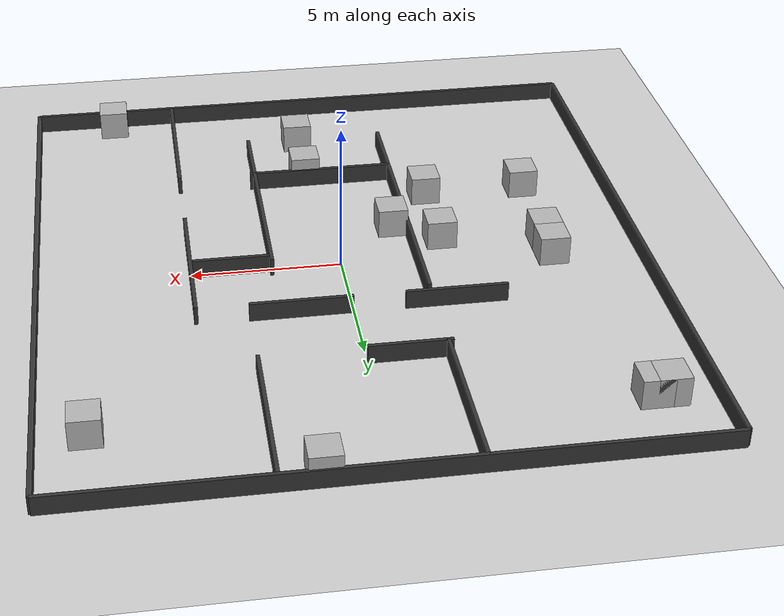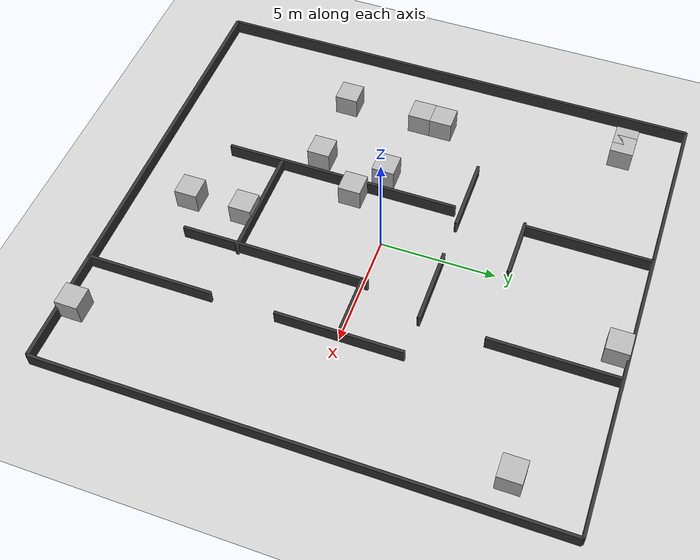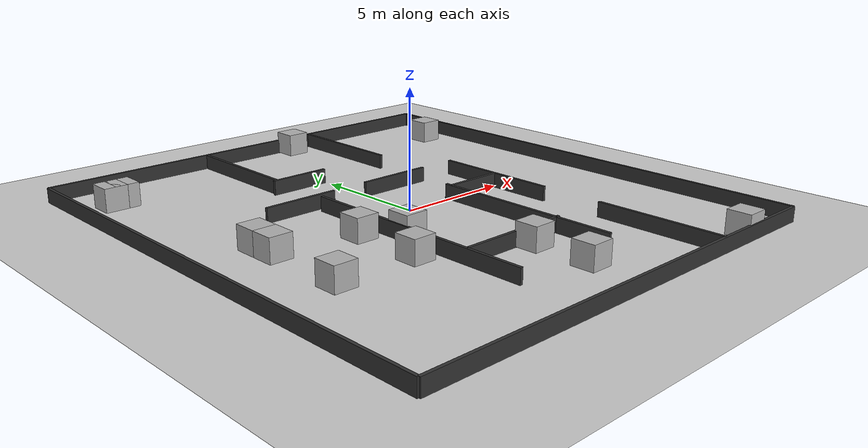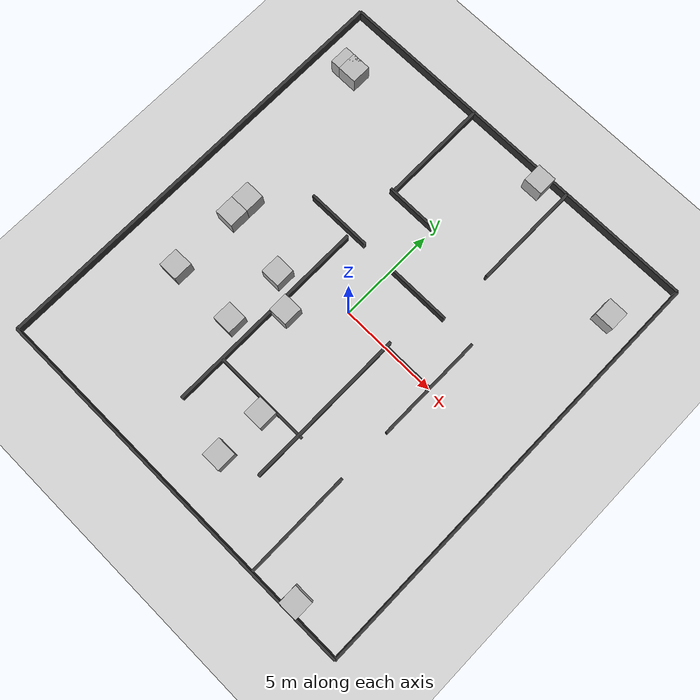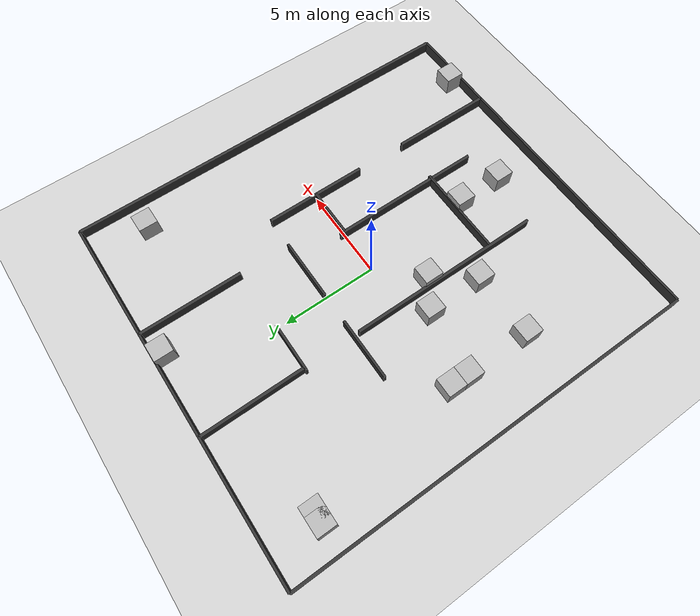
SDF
<?xml version="1.0" ?>
<sdf version='1.9'>
  <world name='test_world'>
    <physics name='1ms' type='ignored'>
      <max_step_size>0.001</max_step_size>
      <real_time_factor>1</real_time_factor>
      <real_time_update_rate>1000</real_time_update_rate>
    </physics>
    <plugin name='ignition::gazebo::systems::Physics' filename='ignition-gazebo-physics-system'/>
    <plugin name='ignition::gazebo::systems::UserCommands' filename='ignition-gazebo-user-commands-system'/>
    <plugin name='ignition::gazebo::systems::SceneBroadcaster' filename='ignition-gazebo-scene-broadcaster-system'/>
    <gravity>0 0 -9.8</gravity>
    <magnetic_field>6e-06 2.3e-05 -4.2e-05</magnetic_field>
    <atmosphere type='adiabatic'/>
    <scene>
      <ambient>0.4 0.4 0.4 1</ambient>
      <background>0.7 0.7 0.7 1</background>
      <shadows>true</shadows>
    </scene>
    <model name='ground_plane'>
      <static>true</static>
      <link name='link'>
        <collision name='collision'>
          <geometry>
            <plane>
              <normal>0 0 1</normal>
              <size>20 22</size>
            </plane>
          </geometry>
          <surface>
            <friction>
              <ode/>
            </friction>
            <bounce/>
            <contact/>
          </surface>
        </collision>
        <visual name='visual'>
          <geometry>
            <plane>
              <normal>0 0 1</normal>
              <size>20 22</size>
            </plane>
          </geometry>
          <material>
            <ambient>0.8 0.8 0.8 1</ambient>
            <diffuse>0.8 0.8 0.8 1</diffuse>
            <specular>0.8 0.8 0.8 1</specular>
          </material>
        </visual>
        <pose>0 0 0 0 0 0</pose>
        <inertial>
          <pose>0 0 0 0 0 0</pose>
          <mass>1</mass>
          <inertia>
            <ixx>1</ixx>
            <ixy>0</ixy>
            <ixz>0</ixz>
            <iyy>1</iyy>
            <iyz>0</iyz>
            <izz>1</izz>
          </inertia>
        </inertial>
        <enable_wind>false</enable_wind>
      </link>
      <pose>0 0 0 0 0 0</pose>
      <self_collide>false</self_collide>
    </model>
    <model name='wall'>
      <link name='length_right'>
        <pose>0 -11 0 0 0 0</pose>
        <inertial>
          <mass>1.14395</mass>
          <inertia>
            <ixx>9.5329</ixx>
            <ixy>0</ixy>
            <ixz>0</ixz>
            <iyy>0.0238</iyy>
            <iyz>0</iyz>
            <izz>9.5567</izz>
          </inertia>
          <pose>0 0 0 0 0 0</pose>
        </inertial>
        <collision name='box_collision'>
          <geometry>
            <box>
              <size>20 0.125 1.2</size>
            </box>
          </geometry>
          <surface>
            <friction>
              <ode/>
            </friction>
            <bounce/>
            <contact/>
          </surface>
        </collision>
        <visual name='box_visual'>
          <geometry>
            <box>
              <size>20 0.125 1.2</size>
            </box>
          </geometry>
          <material>
            <ambient>0.2 0.2 0.2 1</ambient>
            <diffuse>0.2 0.2 0.2 1</diffuse>
            <specular>0.2 0.2 0.2 1</specular>
          </material>
        </visual>
        <enable_wind>false</enable_wind>
      </link>
      <link name='length_left'>
        <pose>0 11 0 0 0 0</pose>
        <inertial>
          <mass>1.14395</mass>
          <inertia>
            <ixx>9.5329</ixx>
            <ixy>0</ixy>
            <ixz>0</ixz>
            <iyy>0.0238</iyy>
            <iyz>0</iyz>
            <izz>9.5567</izz>
          </inertia>
          <pose>0 0 0 0 0 0</pose>
        </inertial>
        <collision name='box_collision'>
          <geometry>
            <box>
              <size>20 0.125 1.2</size>
            </box>
          </geometry>
          <surface>
            <friction>
              <ode/>
            </friction>
            <bounce/>
            <contact/>
          </surface>
        </collision>
        <visual name='box_visual'>
          <geometry>
            <box>
              <size>20 0.125 1.2</size>
            </box>
          </geometry>
          <material>
            <ambient>0.2 0.2 0.2 1</ambient>
            <diffuse>0.2 0.2 0.2 1</diffuse>
            <specular>0.2 0.2 0.2 1</specular>
          </material>
        </visual>
        <enable_wind>false</enable_wind>
      </link>
      <link name='width_right'>
        <pose>-10 0 0 0 0 0</pose>
        <inertial>
          <mass>1000</mass>
          <inertia>
            <ixx>0.16666</ixx>
            <ixy>0</ixy>
            <ixz>0</ixz>
            <iyy>0.16666</iyy>
            <iyz>0</iyz>
            <izz>0.16666</izz>
          </inertia>
          <pose>0 0 0 0 0 0</pose>
        </inertial>
        <collision name='box_collision'>
          <geometry>
            <box>
              <size>0.125 22 1.2</size>
            </box>
          </geometry>
          <surface>
            <friction>
              <ode/>
            </friction>
            <bounce/>
            <contact/>
          </surface>
        </collision>
        <visual name='box_visual'>
          <geometry>
            <box>
              <size>0.125 22 1.2</size>
            </box>
          </geometry>
          <material>
            <ambient>0.2 0.2 0.2 1</ambient>
            <diffuse>0.2 0.2 0.2 1</diffuse>
            <specular>0.2 0.2 0.2 1</specular>
          </material>
        </visual>
        <enable_wind>false</enable_wind>
      </link>
      <link name='width_left'>
        <pose>10 0 0 0 0 0</pose>
        <inertial>
          <mass>1000</mass>
          <inertia>
            <ixx>0.16666</ixx>
            <ixy>0</ixy>
            <ixz>0</ixz>
            <iyy>0.16666</iyy>
            <iyz>0</iyz>
            <izz>0.16666</izz>
          </inertia>
          <pose>0 0 0 0 0 0</pose>
        </inertial>
        <collision name='box_collision'>
          <geometry>
            <box>
              <size>0.125 22 1.2</size>
            </box>
          </geometry>
          <surface>
            <friction>
              <ode/>
            </friction>
            <bounce/>
            <contact/>
          </surface>
        </collision>
        <visual name='box_visual'>
          <geometry>
            <box>
              <size>0.125 22 1.2</size>
            </box>
          </geometry>
          <material>
            <ambient>0.2 0.2 0.2 1</ambient>
            <diffuse>0.2 0.2 0.2 1</diffuse>
            <specular>0.2 0.2 0.2 1</specular>
          </material>
        </visual>
        <enable_wind>false</enable_wind>
      </link>
      <link name='top_from_right_to_middle_width'>
        <pose>5 -8.25 0 0 0 0</pose>
        <inertial>
          <mass>1000</mass>
          <inertia>
            <ixx>9.5329</ixx>
            <ixy>0</ixy>
            <ixz>0</ixz>
            <iyy>0.0238</iyy>
            <iyz>0</iyz>
            <izz>9.5567</izz>
          </inertia>
          <pose>0 0 0 0 0 0</pose>
        </inertial>
        <collision name='box_collision'>
          <geometry>
            <box>
              <size>0.125 5.5 1.2</size>
            </box>
          </geometry>
          <surface>
            <friction>
              <ode/>
            </friction>
            <bounce/>
            <contact/>
          </surface>
        </collision>
        <visual name='box_visual'>
          <geometry>
            <box>
              <size>0.125 5.5 1.2</size>
            </box>
          </geometry>
          <material>
            <ambient>0.2 0.2 0.2 1</ambient>
            <diffuse>0.2 0.2 0.2 1</diffuse>
            <specular>0.2 0.2 0.2 1</specular>
          </material>
        </visual>
        <enable_wind>false</enable_wind>
      </link>
      <link name='top_middle_width'>
        <pose>5 0 0 0 0 0</pose>
        <inertial>
          <mass>1000</mass>
          <inertia>
            <ixx>9.5329</ixx>
            <ixy>0</ixy>
            <ixz>0</ixz>
            <iyy>0.0238</iyy>
            <iyz>0</iyz>
            <izz>9.5567</izz>
          </inertia>
          <pose>0 0 0 0 0 0</pose>
        </inertial>
        <collision name='box_collision'>
          <geometry>
            <box>
              <size>0.125 5.5 1.2</size>
            </box>
          </geometry>
          <surface>
            <friction>
              <ode/>
            </friction>
            <bounce/>
            <contact/>
          </surface>
        </collision>
        <visual name='box_visual'>
          <geometry>
            <box>
              <size>0.125 5.5 1.2</size>
            </box>
          </geometry>
          <material>
            <ambient>0.2 0.2 0.2 1</ambient>
            <diffuse>0.2 0.2 0.2 1</diffuse>
            <specular>0.2 0.2 0.2 1</specular>
          </material>
        </visual>
        <enable_wind>false</enable_wind>
      </link>
      <link name='top_left_length'>
        <pose>3.333 8.25 0 0 0 0</pose>
        <inertial>
          <mass>1000</mass>
          <inertia>
            <ixx>9.5329</ixx>
            <ixy>0</ixy>
            <ixz>0</ixz>
            <iyy>0.0238</iyy>
            <iyz>0</iyz>
            <izz>9.5567</izz>
          </inertia>
          <pose>0 0 0 0 0 0</pose>
        </inertial>
        <collision name='box_collision'>
          <geometry>
            <box>
              <size>0.125 5.5 1.2</size>
            </box>
          </geometry>
          <surface>
            <friction>
              <ode/>
            </friction>
            <bounce/>
            <contact/>
          </surface>
        </collision>
        <visual name='box_visual'>
          <geometry>
            <box>
              <size>0.125 5.5 1.2</size>
            </box>
          </geometry>
          <material>
            <ambient>0.2 0.2 0.2 1</ambient>
            <diffuse>0.2 0.2 0.2 1</diffuse>
            <specular>0.2 0.2 0.2 1</specular>
          </material>
        </visual>
        <enable_wind>false</enable_wind>
      </link>
      <link name='middle_length'>
        <pose>3.667 0 0 0 0 0</pose>
        <inertial>
          <mass>1000</mass>
          <inertia>
            <ixx>9.5329</ixx>
            <ixy>0</ixy>
            <ixz>0</ixz>
            <iyy>0.0238</iyy>
            <iyz>0</iyz>
            <izz>9.5567</izz>
          </inertia>
          <pose>0 0 0 0 0 0</pose>
        </inertial>
        <collision name='box_collision'>
          <geometry>
            <box>
              <size>2.667 0.125 1.2</size>
            </box>
          </geometry>
          <surface>
            <friction>
              <ode/>
            </friction>
            <bounce/>
            <contact/>
          </surface>
        </collision>
        <visual name='box_visual'>
          <geometry>
            <box>
              <size>2.667 0.125 1.2</size>
            </box>
          </geometry>
          <material>
            <ambient>0.2 0.2 0.2 1</ambient>
            <diffuse>0.2 0.2 0.2 1</diffuse>
            <specular>0.2 0.2 0.2 1</specular>
          </material>
        </visual>
        <enable_wind>false</enable_wind>
      </link>
      <link name='middle_width'>
        <pose>2.333 -3.85 0 0 0 0</pose>
        <inertial>
          <mass>1000</mass>
          <inertia>
            <ixx>9.5329</ixx>
            <ixy>0</ixy>
            <ixz>0</ixz>
            <iyy>0.0238</iyy>
            <iyz>0</iyz>
            <izz>9.5567</izz>
          </inertia>
          <pose>0 0 0 0 0 0</pose>
        </inertial>
        <collision name='box_collision'>
          <geometry>
            <box>
              <size>0.125 8.25 1.2</size>
            </box>
          </geometry>
          <surface>
            <friction>
              <ode/>
            </friction>
            <bounce/>
            <contact/>
          </surface>
        </collision>
        <visual name='box_visual'>
          <geometry>
            <box>
              <size>0.125 8.25 1.2</size>
            </box>
          </geometry>
          <material>
            <ambient>0.2 0.2 0.2 1</ambient>
            <diffuse>0.2 0.2 0.2 1</diffuse>
            <specular>0.2 0.2 0.2 1</specular>
          </material>
        </visual>
        <enable_wind>false</enable_wind>
      </link>
      <link name='middle_left_length'>
        <pose>1.667 2.75 0 0 0 0</pose>
        <inertial>
          <mass>1000</mass>
          <inertia>
            <ixx>9.5329</ixx>
            <ixy>0</ixy>
            <ixz>0</ixz>
            <iyy>0.0238</iyy>
            <iyz>0</iyz>
            <izz>9.5567</izz>
          </inertia>
          <pose>0 0 0 0 0 0</pose>
        </inertial>
        <collision name='box_collision'>
          <geometry>
            <box>
              <size>3.333 0.125 1.2</size>
            </box>
          </geometry>
          <surface>
            <friction>
              <ode/>
            </friction>
            <bounce/>
            <contact/>
          </surface>
        </collision>
        <visual name='box_visual'>
          <geometry>
            <box>
              <size>3.333 0.125 1.2</size>
            </box>
          </geometry>
          <material>
            <ambient>0.2 0.2 0.2 1</ambient>
            <diffuse>0.2 0.2 0.2 1</diffuse>
            <specular>0.2 0.2 0.2 1</specular>
          </material>
        </visual>
        <enable_wind>false</enable_wind>
      </link>
      <link name='low_left_length'>
        <pose>-3.333 2.75 0 0 0 0</pose>
        <inertial>
          <mass>1000</mass>
          <inertia>
            <ixx>9.5329</ixx>
            <ixy>0</ixy>
            <ixz>0</ixz>
            <iyy>0.0238</iyy>
            <iyz>0</iyz>
            <izz>9.5567</izz>
          </inertia>
          <pose>0 0 0 0 0 0</pose>
        </inertial>
        <collision name='box_collision'>
          <geometry>
            <box>
              <size>3.333 0.125 1.2</size>
            </box>
          </geometry>
          <surface>
            <friction>
              <ode/>
            </friction>
            <bounce/>
            <contact/>
          </surface>
        </collision>
        <visual name='box_visual'>
          <geometry>
            <box>
              <size>3.333 0.125 1.2</size>
            </box>
          </geometry>
          <material>
            <ambient>0.2 0.2 0.2 1</ambient>
            <diffuse>0.2 0.2 0.2 1</diffuse>
            <specular>0.2 0.2 0.2 1</specular>
          </material>
        </visual>
        <enable_wind>false</enable_wind>
      </link>
      <link name='left_blind_alley_left_wall'>
        <pose>-1.333 5.5 0 0 0 0</pose>
        <inertial>
          <mass>1000</mass>
          <inertia>
            <ixx>9.5329</ixx>
            <ixy>0</ixy>
            <ixz>0</ixz>
            <iyy>0.0238</iyy>
            <iyz>0</iyz>
            <izz>9.5567</izz>
          </inertia>
          <pose>0 0 0 0 0 0</pose>
        </inertial>
        <collision name='box_collision'>
          <geometry>
            <box>
              <size>2.667 0.125 1.2</size>
            </box>
          </geometry>
          <surface>
            <friction>
              <ode/>
            </friction>
            <bounce/>
            <contact/>
          </surface>
        </collision>
        <visual name='box_visual'>
          <geometry>
            <box>
              <size>2.667 0.125 1.2</size>
            </box>
          </geometry>
          <material>
            <ambient>0.2 0.2 0.2 1</ambient>
            <diffuse>0.2 0.2 0.2 1</diffuse>
            <specular>0.2 0.2 0.2 1</specular>
          </material>
        </visual>
        <enable_wind>false</enable_wind>
      </link>
      <link name='left_blind_alley_bottom_wall'>
        <pose>-2.5 8.25 0 0 0 0</pose>
        <inertial>
          <mass>1000</mass>
          <inertia>
            <ixx>9.5329</ixx>
            <ixy>0</ixy>
            <ixz>0</ixz>
            <iyy>0.0238</iyy>
            <iyz>0</iyz>
            <izz>9.5567</izz>
          </inertia>
          <pose>0 0 0 0 0 0</pose>
        </inertial>
        <collision name='box_collision'>
          <geometry>
            <box>
              <size>0.125 5.5 1.2</size>
            </box>
          </geometry>
          <surface>
            <friction>
              <ode/>
            </friction>
            <bounce/>
            <contact/>
          </surface>
        </collision>
        <visual name='box_visual'>
          <geometry>
            <box>
              <size>0.125 5.5 1.2</size>
            </box>
          </geometry>
          <material>
            <ambient>0.2 0.2 0.2 1</ambient>
            <diffuse>0.2 0.2 0.2 1</diffuse>
            <specular>0.2 0.2 0.2 1</specular>
          </material>
        </visual>
        <enable_wind>false</enable_wind>
      </link>
      <link name='left_bottom_width'>
        <pose>-2.5 -2.75 0 0 0 0</pose>
        <inertial>
          <mass>1000</mass>
          <inertia>
            <ixx>9.5329</ixx>
            <ixy>0</ixy>
            <ixz>0</ixz>
            <iyy>0.0238</iyy>
            <iyz>0</iyz>
            <izz>9.5567</izz>
          </inertia>
          <pose>0 0 0 0 0 0</pose>
        </inertial>
        <collision name='box_collision'>
          <geometry>
            <box>
              <size>0.125 10.45 1.2</size>
            </box>
          </geometry>
          <surface>
            <friction>
              <ode/>
            </friction>
            <bounce/>
            <contact/>
          </surface>
        </collision>
        <visual name='box_visual'>
          <geometry>
            <box>
              <size>0.125 10.45 1.2</size>
            </box>
          </geometry>
          <material>
            <ambient>0.2 0.2 0.2 1</ambient>
            <diffuse>0.2 0.2 0.2 1</diffuse>
            <specular>0.2 0.2 0.2 1</specular>
          </material>
        </visual>
        <enable_wind>false</enable_wind>
      </link>
      <link name='right_middle_length'>
        <pose>0 -5.5 0 0 0 0</pose>
        <inertial>
          <mass>1000</mass>
          <inertia>
            <ixx>9.5329</ixx>
            <ixy>0</ixy>
            <ixz>0</ixz>
            <iyy>0.0238</iyy>
            <iyz>0</iyz>
            <izz>9.5567</izz>
          </inertia>
          <pose>0 0 0 0 0 0</pose>
        </inertial>
        <collision name='box_collision'>
          <geometry>
            <box>
              <size>5 0.125 1.2</size>
            </box>
          </geometry>
          <surface>
            <friction>
              <ode/>
            </friction>
            <bounce/>
            <contact/>
          </surface>
        </collision>
        <visual name='box_visual'>
          <geometry>
            <box>
              <size>5 0.125 1.2</size>
            </box>
          </geometry>
          <material>
            <ambient>0.2 0.2 0.2 1</ambient>
            <diffuse>0.2 0.2 0.2 1</diffuse>
            <specular>0.2 0.2 0.2 1</specular>
          </material>
        </visual>
        <enable_wind>false</enable_wind>
      </link>
      <static>true</static>
      <self_collide>false</self_collide>
      <pose>0 0 0 0 0 0</pose>
    </model>
    <model name='box'>
      <pose>8.5 8.0 0.5 0 0 0</pose>
      <link name='box_link'>
        <inertial>
          <inertia>
            <ixx>0.16666</ixx>
            <ixy>0</ixy>
            <ixz>0</ixz>
            <iyy>0.16666</iyy>
            <iyz>0</iyz>
            <izz>0.16666</izz>
          </inertia>
          <mass>1</mass>
          <pose>0 0 0 0 0 0</pose>
        </inertial>
        <collision name='box_collision'>
          <geometry>
            <box>
              <size>1 1 1</size>
            </box>
          </geometry>
          <surface>
            <friction>
              <ode/>
            </friction>
            <bounce/>
            <contact/>
          </surface>
        </collision>
        <visual name='box_visual'>
          <geometry>
            <box>
              <size>1 1 1</size>
            </box>
          </geometry>
          <material>
            <ambient>0.3 0.3 0.3 1</ambient>
            <diffuse>0.7 0.7 0.7 1</diffuse>
            <specular>1 1 1 1</specular>
          </material>
        </visual>
        <pose>0 0 0 0 0 0</pose>
        <enable_wind>false</enable_wind>
      </link>
      <static>false</static>
      <self_collide>false</self_collide>
    </model>
    <model name='box_0'>
      <pose>7.2 -10.5 0.5 0 0 0</pose>
      <link name='box_link'>
        <inertial>
          <inertia>
            <ixx>0.16666</ixx>
            <ixy>0</ixy>
            <ixz>0</ixz>
            <iyy>0.16666</iyy>
            <iyz>0</iyz>
            <izz>0.16666</izz>
          </inertia>
          <mass>1</mass>
          <pose>0 0 0 0 0 0</pose>
        </inertial>
        <collision name='box_collision'>
          <geometry>
            <box>
              <size>1 1 1</size>
            </box>
          </geometry>
          <surface>
            <friction>
              <ode/>
            </friction>
            <bounce/>
            <contact/>
          </surface>
        </collision>
        <visual name='box_visual'>
          <geometry>
            <box>
              <size>1 1 1</size>
            </box>
          </geometry>
          <material>
            <ambient>0.3 0.3 0.3 1</ambient>
            <diffuse>0.7 0.7 0.7 1</diffuse>
            <specular>1 1 1 1</specular>
          </material>
        </visual>
        <pose>0 0 0 0 0 0</pose>
        <enable_wind>false</enable_wind>
      </link>
      <static>false</static>
      <self_collide>false</self_collide>
    </model>
    <model name='box_1'>
      <pose>2.0 10.5 0.5 0 0 0</pose>
      <link name='box_link'>
        <inertial>
          <inertia>
            <ixx>0.16666</ixx>
            <ixy>0</ixy>
            <ixz>0</ixz>
            <iyy>0.16666</iyy>
            <iyz>0</iyz>
            <izz>0.16666</izz>
          </inertia>
          <mass>1</mass>
          <pose>0 0 0 0 0 0</pose>
        </inertial>
        <collision name='box_collision'>
          <geometry>
            <box>
              <size>1 1 1</size>
            </box>
          </geometry>
          <surface>
            <friction>
              <ode/>
            </friction>
            <bounce/>
            <contact/>
          </surface>
        </collision>
        <visual name='box_visual'>
          <geometry>
            <box>
              <size>1 1 1</size>
            </box>
          </geometry>
          <material>
            <ambient>0.3 0.3 0.3 1</ambient>
            <diffuse>0.7 0.7 0.7 1</diffuse>
            <specular>1 1 1 1</specular>
          </material>
        </visual>
        <pose>0 0 0 0 0 0</pose>
        <enable_wind>false</enable_wind>
      </link>
      <static>false</static>
      <self_collide>false</self_collide>
    </model>
    <model name='box_2'>
      <pose>-2.0 -2.0 0.5 0 0 0</pose>
      <link name='box_link'>
        <inertial>
          <inertia>
            <ixx>0.16666</ixx>
            <ixy>0</ixy>
            <ixz>0</ixz>
            <iyy>0.16666</iyy>
            <iyz>0</iyz>
            <izz>0.16666</izz>
          </inertia>
          <mass>1</mass>
          <pose>0 0 0 0 0 0</pose>
        </inertial>
        <collision name='box_collision'>
          <geometry>
            <box>
              <size>1 1 1</size>
            </box>
          </geometry>
          <surface>
            <friction>
              <ode/>
            </friction>
            <bounce/>
            <contact/>
          </surface>
        </collision>
        <visual name='box_visual'>
          <geometry>
            <box>
              <size>1 1 1</size>
            </box>
          </geometry>
          <material>
            <ambient>0.3 0.3 0.3 1</ambient>
            <diffuse>0.7 0.7 0.7 1</diffuse>
            <specular>1 1 1 1</specular>
          </material>
        </visual>
        <pose>0 0 0 0 0 0</pose>
        <enable_wind>false</enable_wind>
      </link>
      <static>false</static>
      <self_collide>false</self_collide>
    </model>
    <model name='box_3'>
      <pose>-3.5 -1.0 0.5 0 0 0</pose>
      <link name='box_link'>
        <inertial>
          <inertia>
            <ixx>0.16666</ixx>
            <ixy>0</ixy>
            <ixz>0</ixz>
            <iyy>0.16666</iyy>
            <iyz>0</iyz>
            <izz>0.16666</izz>
          </inertia>
          <mass>1</mass>
          <pose>0 0 0 0 0 0</pose>
        </inertial>
        <collision name='box_collision'>
          <geometry>
            <box>
              <size>1 1 1</size>
            </box>
          </geometry>
          <surface>
            <friction>
              <ode/>
            </friction>
            <bounce/>
            <contact/>
          </surface>
        </collision>
        <visual name='box_visual'>
          <geometry>
            <box>
              <size>1 1 1</size>
            </box>
          </geometry>
          <material>
            <ambient>0.3 0.3 0.3 1</ambient>
            <diffuse>0.7 0.7 0.7 1</diffuse>
            <specular>1 1 1 1</specular>
          </material>
        </visual>
        <pose>0 0 0 0 0 0</pose>
        <enable_wind>false</enable_wind>
      </link>
      <static>false</static>
      <self_collide>false</self_collide>
    </model>
    <model name='box_4'>
      <pose>-3.5 -4.0 0.5 0 0 0</pose>
      <link name='box_link'>
        <inertial>
          <inertia>
            <ixx>0.16666</ixx>
            <ixy>0</ixy>
            <ixz>0</ixz>
            <iyy>0.16666</iyy>
            <iyz>0</iyz>
            <izz>0.16666</izz>
          </inertia>
          <mass>1</mass>
          <pose>0 0 0 0 0 0</pose>
        </inertial>
        <collision name='box_collision'>
          <geometry>
            <box>
              <size>1 1 1</size>
            </box>
          </geometry>
          <surface>
            <friction>
              <ode/>
            </friction>
            <bounce/>
            <contact/>
          </surface>
        </collision>
        <visual name='box_visual'>
          <geometry>
            <box>
              <size>1 1 1</size>
            </box>
          </geometry>
          <material>
            <ambient>0.3 0.3 0.3 1</ambient>
            <diffuse>0.7 0.7 0.7 1</diffuse>
            <specular>1 1 1 1</specular>
          </material>
        </visual>
        <pose>0 0 0 0 0 0</pose>
        <enable_wind>false</enable_wind>
      </link>
      <static>false</static>
      <self_collide>false</self_collide>
    </model>
    <model name='box_5'>
      <pose>-7.0 -0.5 0.5 0 0 0</pose>
      <link name='box_link'>
        <inertial>
          <inertia>
            <ixx>0.16666</ixx>
            <ixy>0</ixy>
            <ixz>0</ixz>
            <iyy>0.16666</iyy>
            <iyz>0</iyz>
            <izz>0.16666</izz>
          </inertia>
          <mass>1</mass>
          <pose>0 0 0 0 0 0</pose>
        </inertial>
        <collision name='box_collision'>
          <geometry>
            <box>
              <size>1 1 1</size>
            </box>
          </geometry>
          <surface>
            <friction>
              <ode/>
            </friction>
            <bounce/>
            <contact/>
          </surface>
        </collision>
        <visual name='box_visual'>
          <geometry>
            <box>
              <size>1 1 1</size>
            </box>
          </geometry>
          <material>
            <ambient>0.3 0.3 0.3 1</ambient>
            <diffuse>0.7 0.7 0.7 1</diffuse>
            <specular>1 1 1 1</specular>
          </material>
        </visual>
        <pose>0 0 0 0 0 0</pose>
        <enable_wind>false</enable_wind>
      </link>
      <static>false</static>
      <self_collide>false</self_collide>
    </model>
    <model name='box_6'>
      <pose>-8.5 8.5 0.5 0 0 0</pose>
      <link name='box_link'>
        <inertial>
          <inertia>
            <ixx>0.16666</ixx>
            <ixy>0</ixy>
            <ixz>0</ixz>
            <iyy>0.16666</iyy>
            <iyz>0</iyz>
            <izz>0.16666</izz>
          </inertia>
          <mass>1</mass>
          <pose>0 0 0 0 0 0</pose>
        </inertial>
        <collision name='box_collision'>
          <geometry>
            <box>
              <size>1 1 1</size>
            </box>
          </geometry>
          <surface>
            <friction>
              <ode/>
            </friction>
            <bounce/>
            <contact/>
          </surface>
        </collision>
        <visual name='box_visual'>
          <geometry>
            <box>
              <size>1 1 1</size>
            </box>
          </geometry>
          <material>
            <ambient>0.3 0.3 0.3 1</ambient>
            <diffuse>0.7 0.7 0.7 1</diffuse>
            <specular>1 1 1 1</specular>
          </material>
        </visual>
        <pose>0 0 0 0 0 0</pose>
        <enable_wind>false</enable_wind>
      </link>
      <static>false</static>
      <self_collide>false</self_collide>
    </model>
    <model name='box_7'>
      <pose>-7.0 -4.0 0.5 0 0 0</pose>
      <link name='box_link'>
        <inertial>
          <inertia>
            <ixx>0.16666</ixx>
            <ixy>0</ixy>
            <ixz>0</ixz>
            <iyy>0.16666</iyy>
            <iyz>0</iyz>
            <izz>0.16666</izz>
          </inertia>
          <mass>1</mass>
          <pose>0 0 0 0 0 0</pose>
        </inertial>
        <collision name='box_collision'>
          <geometry>
            <box>
              <size>1 1 1</size>
            </box>
          </geometry>
          <surface>
            <friction>
              <ode/>
            </friction>
            <bounce/>
            <contact/>
          </surface>
        </collision>
        <visual name='box_visual'>
          <geometry>
            <box>
              <size>1 1 1</size>
            </box>
          </geometry>
          <material>
            <ambient>0.3 0.3 0.3 1</ambient>
            <diffuse>0.7 0.7 0.7 1</diffuse>
            <specular>1 1 1 1</specular>
          </material>
        </visual>
        <pose>0 0 0 0 0 0</pose>
        <enable_wind>false</enable_wind>
      </link>
      <static>false</static>
      <self_collide>false</self_collide>
    </model>
    <model name='box_8'>
      <pose>-7.0 0.5 0.5 0 0 0</pose>
      <link name='box_link'>
        <inertial>
          <inertia>
            <ixx>0.16666</ixx>
            <ixy>0</ixy>
            <ixz>0</ixz>
            <iyy>0.16666</iyy>
            <iyz>0</iyz>
            <izz>0.16666</izz>
          </inertia>
          <mass>1</mass>
          <pose>0 0 0 0 0 0</pose>
        </inertial>
        <collision name='box_collision'>
          <geometry>
            <box>
              <size>1 1 1</size>
            </box>
          </geometry>
          <surface>
            <friction>
              <ode/>
            </friction>
            <bounce/>
            <contact/>
          </surface>
        </collision>
        <visual name='box_visual'>
          <geometry>
            <box>
              <size>1 1 1</size>
            </box>
          </geometry>
          <material>
            <ambient>0.3 0.3 0.3 1</ambient>
            <diffuse>0.7 0.7 0.7 1</diffuse>
            <specular>1 1 1 1</specular>
          </material>
        </visual>
        <pose>0 0 0 0 0 0</pose>
        <enable_wind>false</enable_wind>
      </link>
      <static>false</static>
      <self_collide>false</self_collide>
    </model>
    <model name='box_9'>
      <pose>-8.0 8.5 0.5 0 0 0</pose>
      <link name='box_link'>
        <inertial>
          <inertia>
            <ixx>0.16666</ixx>
            <ixy>0</ixy>
            <ixz>0</ixz>
            <iyy>0.16666</iyy>
            <iyz>0</iyz>
            <izz>0.16666</izz>
          </inertia>
          <mass>1</mass>
          <pose>0 0 0 0 0 0</pose>
        </inertial>
        <collision name='box_collision'>
          <geometry>
            <box>
              <size>1 1 1</size>
            </box>
          </geometry>
          <surface>
            <friction>
              <ode/>
            </friction>
            <bounce/>
            <contact/>
          </surface>
        </collision>
        <visual name='box_visual'>
          <geometry>
            <box>
              <size>1 1 1</size>
            </box>
          </geometry>
          <material>
            <ambient>0.3 0.3 0.3 1</ambient>
            <diffuse>0.7 0.7 0.7 1</diffuse>
            <specular>1 1 1 1</specular>
          </material>
        </visual>
        <pose>0 0 0 0 0 0</pose>
        <enable_wind>false</enable_wind>
      </link>
      <static>false</static>
      <self_collide>false</self_collide>
    </model>
    <model name='box_10'>
      <pose>0.5 -6.0 0.5 0 0 0</pose>
      <link name='box_link'>
        <inertial>
          <inertia>
            <ixx>0.16666</ixx>
            <ixy>0</ixy>
            <ixz>0</ixz>
            <iyy>0.16666</iyy>
            <iyz>0</iyz>
            <izz>0.16666</izz>
          </inertia>
          <mass>1</mass>
          <pose>0 0 0 0 0 0</pose>
        </inertial>
        <collision name='box_collision'>
          <geometry>
            <box>
              <size>1 1 1</size>
            </box>
          </geometry>
          <surface>
            <friction>
              <ode/>
            </friction>
            <bounce/>
            <contact/>
          </surface>
        </collision>
        <visual name='box_visual'>
          <geometry>
            <box>
              <size>1 1 1</size>
            </box>
          </geometry>
          <material>
            <ambient>0.3 0.3 0.3 1</ambient>
            <diffuse>0.7 0.7 0.7 1</diffuse>
            <specular>1 1 1 1</specular>
          </material>
        </visual>
        <pose>0 0 0 0 0 0</pose>
        <enable_wind>false</enable_wind>
      </link>
      <static>false</static>
      <self_collide>false</self_collide>
    </model>
    <model name='box_11'>
      <pose>0.5 -8.5 0.5 0 0 0</pose>
      <link name='box_link'>
        <inertial>
          <inertia>
            <ixx>0.16666</ixx>
            <ixy>0</ixy>
            <ixz>0</ixz>
            <iyy>0.16666</iyy>
            <iyz>0</iyz>
            <izz>0.16666</izz>
          </inertia>
          <mass>1</mass>
          <pose>0 0 0 0 0 0</pose>
        </inertial>
        <collision name='box_collision'>
          <geometry>
            <box>
              <size>1 1 1</size>
            </box>
          </geometry>
          <surface>
            <friction>
              <ode/>
            </friction>
            <bounce/>
            <contact/>
          </surface>
        </collision>
        <visual name='box_visual'>
          <geometry>
            <box>
              <size>1 1 1</size>
            </box>
          </geometry>
          <material>
            <ambient>0.3 0.3 0.3 1</ambient>
            <diffuse>0.7 0.7 0.7 1</diffuse>
            <specular>1 1 1 1</specular>
          </material>
        </visual>
        <pose>0 0 0 0 0 0</pose>
        <enable_wind>false</enable_wind>
      </link>
      <static>false</static>
      <self_collide>false</self_collide>
    </model>
    <light name='sun' type='directional'>
      <pose>0 0 10 0 0 0</pose>
      <cast_shadows>true</cast_shadows>
      <intensity>1</intensity>
      <direction>-0.5 0.1 -0.9</direction>
      <diffuse>0.8 0.8 0.8 1</diffuse>
      <specular>0.2 0.2 0.2 1</specular>
      <attenuation>
        <range>1000</range>
        <linear>0.01</linear>
        <constant>0.9</constant>
        <quadratic>0.001</quadratic>
      </attenuation>
      <spot>
        <inner_angle>0</inner_angle>
        <outer_angle>0</outer_angle>
        <falloff>0</falloff>
      </spot>
    </light>
  </world>
</sdf>
